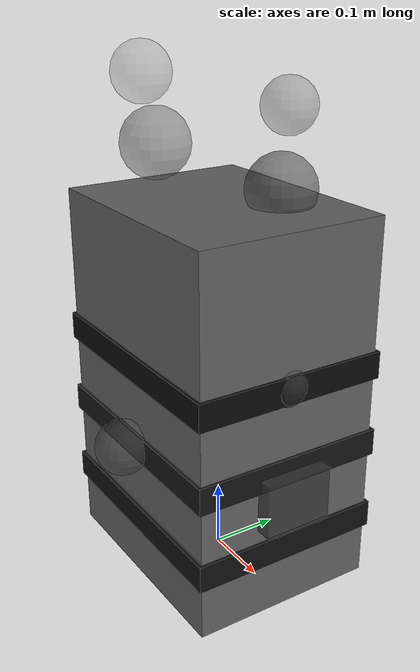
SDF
<?xml version="1.0" ?>
<sdf version="1.6">
  <model name="building_smoke">
    <static>true</static>

    <!-- 主楼体：烟灰色 -->
    <link name="body">
      <pose>0 0 0.275 0 0 0</pose>
      <visual name="body_v"><geometry><box><size>0.35 0.28 0.55</size></box></geometry>
        <material><ambient>0.40 0.40 0.40 1.0</ambient><diffuse>0.38 0.38 0.38 1.0</diffuse></material></visual>
      <collision name="body_c"><geometry><box><size>0.35 0.28 0.55</size></box></geometry></collision>
    </link>

    <!-- 窗户：浓黑 -->
    <link name="win0"><pose>0 0 0.10 0 0 0</pose>
      <visual name="w0v"><geometry><box><size>0.36 0.29 0.04</size></box></geometry>
        <material><ambient>0.08 0.08 0.08 1.0</ambient><diffuse>0.06 0.06 0.06 1.0</diffuse></material></visual>
    </link>
    <link name="win1"><pose>0 0 0.22 0 0 0</pose>
      <visual name="w1v"><geometry><box><size>0.36 0.29 0.04</size></box></geometry>
        <material><ambient>0.10 0.10 0.10 1.0</ambient><diffuse>0.08 0.08 0.08 1.0</diffuse></material></visual>
    </link>
    <link name="win2"><pose>0 0 0.34 0 0 0</pose>
      <visual name="w2v"><geometry><box><size>0.36 0.29 0.04</size></box></geometry>
        <material><ambient>0.06 0.06 0.06 1.0</ambient><diffuse>0.04 0.04 0.04 1.0</diffuse></material></visual>
    </link>

    <!-- 窗口冒出的烟团 -->
    <link name="win_smoke0"><pose>0 0.16 0.10 0 0 0</pose>
      <visual name="ws0v"><geometry><sphere><radius>0.04</radius></sphere></geometry>
        <material><ambient>0.3 0.3 0.3 0.5</ambient></material></visual></link>
    <link name="win_smoke1"><pose>0 -0.16 0.22 0 0 0</pose>
      <visual name="ws1v"><geometry><sphere><radius>0.04</radius></sphere></geometry>
        <material><ambient>0.35 0.35 0.35 0.45</ambient></material></visual></link>
    <link name="win_smoke2"><pose>0.16 0 0.34 0 0 0</pose>
      <visual name="ws2v"><geometry><sphere><radius>0.03</radius></sphere></geometry>
        <material><ambient>0.28 0.28 0.28 0.5</ambient></material></visual></link>

    <!-- 楼顶烟团 — 间距拉大，水平错开 -->
    <link name="smoke0"><pose>0.06 0.06 0.57 0 0 0</pose>
      <visual name="s0v"><geometry><sphere><radius>0.05</radius></sphere></geometry>
        <material><ambient>0.35 0.35 0.35 0.65</ambient></material></visual></link>
    <link name="smoke1"><pose>-0.08 -0.05 0.62 0 0 0</pose>
      <visual name="s1v"><geometry><sphere><radius>0.05</radius></sphere></geometry>
        <material><ambient>0.42 0.42 0.42 0.5</ambient></material></visual></link>
    <link name="smoke2"><pose>0.02 0.10 0.67 0 0 0</pose>
      <visual name="s2v"><geometry><sphere><radius>0.04</radius></sphere></geometry>
        <material><ambient>0.48 0.48 0.48 0.4</ambient></material></visual></link>
    <link name="smoke3"><pose>-0.04 -0.09 0.72 0 0 0</pose>
      <visual name="s3v"><geometry><sphere><radius>0.04</radius></sphere></geometry>
        <material><ambient>0.55 0.55 0.55 0.3</ambient></material></visual></link>

    <!-- 侧面灰渍 -->
    <link name="stain1"><pose>0.18 0 0.18 0 0 0</pose>
      <visual name="st1v"><geometry><box><size>0.04 0.10 0.08</size></box></geometry>
        <material><ambient>0.25 0.25 0.25 0.8</ambient></material></visual></link>
    <link name="stain2"><pose>-0.18 0 0.35 0 0 0</pose>
      <visual name="st2v"><geometry><box><size>0.04 0.08 0.10</size></box></geometry>
        <material><ambient>0.22 0.22 0.22 0.7</ambient></material></visual></link>

    <joint name="j_w0" type="fixed"><parent>body</parent><child>win0</child></joint>
    <joint name="j_w1" type="fixed"><parent>body</parent><child>win1</child></joint>
    <joint name="j_w2" type="fixed"><parent>body</parent><child>win2</child></joint>
    <joint name="j_ws0" type="fixed"><parent>body</parent><child>win_smoke0</child></joint>
    <joint name="j_ws1" type="fixed"><parent>body</parent><child>win_smoke1</child></joint>
    <joint name="j_ws2" type="fixed"><parent>body</parent><child>win_smoke2</child></joint>
    <joint name="j_s0" type="fixed"><parent>body</parent><child>smoke0</child></joint>
    <joint name="j_s1" type="fixed"><parent>body</parent><child>smoke1</child></joint>
    <joint name="j_s2" type="fixed"><parent>body</parent><child>smoke2</child></joint>
    <joint name="j_s3" type="fixed"><parent>body</parent><child>smoke3</child></joint>
    <joint name="j_st1" type="fixed"><parent>body</parent><child>stain1</child></joint>
    <joint name="j_st2" type="fixed"><parent>body</parent><child>stain2</child></joint>
  </model>
</sdf>
